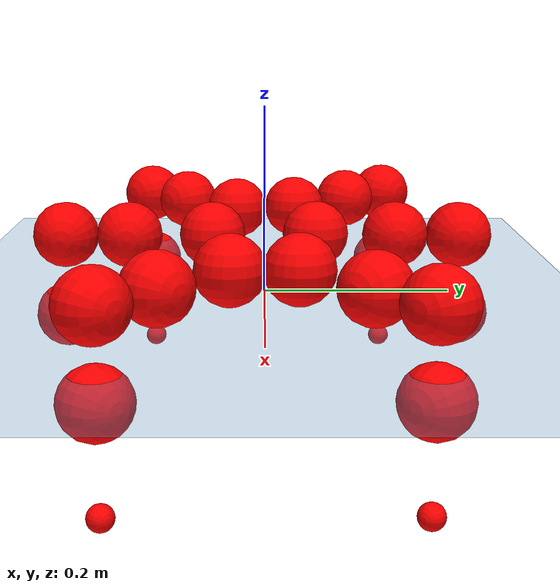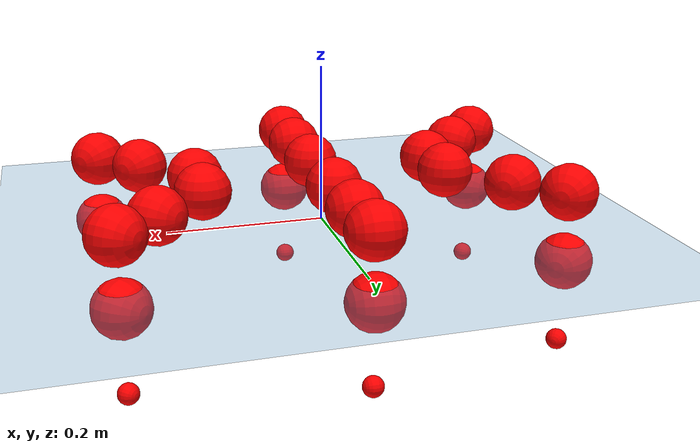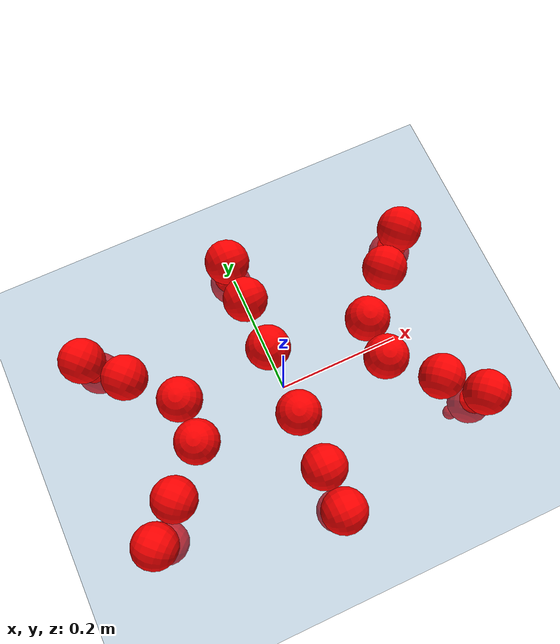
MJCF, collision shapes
<mujoco model="Golem">
  <compiler angle="radian" assetdir="assets" balanceinertia="true" inertiafromgeom="false"/>

  <option timestep="0.005" density="1.2" viscosity="2e-05"/>

  <size nkey="1"/>

  <visual>
    <quality shadowsize="8192"/>
    <map shadowclip="0.5"/>
  </visual>

  <default>
    <default class="/">
      <joint armature="0.01" damping="0.01" frictionloss="0.01"/>
      <geom contype="0" conaffinity="0" group="1" solref="-1000 -80"/>
      <site size="0.01 0.005 0.005" group="5"/>
      <general forcelimited="true" biastype="affine" gainprm="25" biasprm="0 -25 -0.5"/>
      <default class="visual">
        <geom type="mesh" group="2"/>
      </default>
      <default class="collision">
        <geom group="3"/>
      </default>
      <default class="foot">
        <geom size="0.01 0 0" condim="6" group="4" priority="1" solimp="0.015 1 0.01"/>
      </default>
      <default class="reward_collision_sphere">
        <geom group="5" rgba="1 0 0 1"/>
      </default>
    </default>
  </default>

  <asset>
    <texture type="skybox" colorspace="auto" name="//unnamed_texture_0" builtin="gradient" rgb1="0.95 0.95 0.95" rgb2="0.95 0.95 0.95" width="100" height="600"/>
    <texture type="2d" colorspace="auto" name="texplane" builtin="checker" rgb1="0.345 0.575 0.748" rgb2="0.345 0.575 0.748" markrgb="1 1 1" width="512" height="512"/>
    <material name="MatPlane" class="/" texture="texplane" texuniform="true" texrepeat="2 2" specular="0.9"/>
    <mesh name="body" class="/" file="body.stl" scale="0.001 0.001 0.001"/>
    <mesh name="coxa" class="/" file="coxa.stl" scale="0.001 0.001 0.001"/>
    <mesh name="femur" class="/" file="femur.stl" scale="0.001 0.001 0.001"/>
    <mesh name="tibia" class="/" file="tibia.stl" scale="0.001 0.001 0.001"/>
    <mesh name="tarsus" class="/" file="tarsus.stl" scale="0.001 0.001 0.001"/>
  </asset>

  <worldbody>
    <geom name="floor" class="/" size="100 100 0.125" type="plane" group="0" material="MatPlane"/>
    <light name="toplight_shadow" class="/" pos="0 0 5" dir="0.0990148 0.0990148 -0.990148" type="directional" ambient="0.04 0.04 0.04" diffuse="0.55 0.55 0.55" specular="0.12 0.12 0.12"/>
    <light name="toplight_fill" class="/" pos="0 0 5" dir="0.0990148 0.0990148 -0.990148" type="directional" castshadow="false" ambient="0.04 0.04 0.04" diffuse="0.3 0.3 0.3" specular="0.08 0.08 0.08"/>
    <body name="trunk" pos="0.000479741 0.000212125 -0.000276007" quat="1 0.00018822 0.000208516 0.00027289">
      <inertial pos="-0.000327882 0.000958777 -0.00297682" quat="0.99999 -0.00071279 0.00154829 0.00422041" mass="2.55927" diaginertia="0.0102156 0.00117084 0.00939739"/>
      <joint name="//unnamed_joint_0" type="free"/>
      <geom name="//unnamed_geom_1" class="/" pos="0 0 0.0632058" quat="1 0 0 0" type="mesh" rgba="0.9 0.9 0.9 1" mesh="body"/>
      <site name="imu" class="/" pos="0.130551 0.000173257 0.103286" size="0.0088103"/>
      <camera name="track" class="/" pos="0 -1.3014 0" quat="0.707107 0.707107 0 0" mode="trackcom"/>
      <camera name="ego_camera" class="/" pos="0.130624 0 0.0987591" quat="-0.5 -0.5 0.5 0.5"/>
      <body name="coxa_RR" pos="-0.177831 -0.0545469 0.0626423" quat="0.38276 5.58573e-05 0.000204422 -0.923848">
        <inertial pos="-0.000958052 -0.00069848 -0.000529134" quat="0.99998 -0.000132906 0.00626379 -0.00103762" mass="0.139377" diaginertia="0.0103238 0.00116685 0.00947323"/>
        <joint name="coxa_joint_RR" class="/" pos="0 0 0" axis="-0.000496838 -0.00160914 -0.999999" range="-3.13691 3.11355" armature="0.00930339" damping="0.00267425" frictionloss="0.00882792"/>
        <geom name="//unnamed_geom_2" class="/" type="mesh" rgba="0.2 0.2 0.2 1" mesh="coxa"/>
        <geom name="//unnamed_geom_3" class="reward_collision_sphere" size="0.0352412" pos="-0.030144 0 0"/>
        <body name="femur_RR" pos="0.0593505 0.000718029 -0.00073037" quat="0.500219 -0.499937 0.499982 0.499861">
          <inertial pos="0.000507537 -0.000755679 -1.8678e-05" quat="0.999998 -0.0013659 -0.000630638 -0.00128093" mass="0.135633" diaginertia="0.0101433 0.00115473 0.00935446"/>
          <joint name="femur_joint_RR" class="/" pos="0 0 0" axis="0.00174226 0.00168049 -0.999997" range="-3.15769 3.15512" armature="0.00882215" damping="0" frictionloss="0.00848371"/>
          <geom name="//unnamed_geom_4" class="/" type="mesh" rgba="0.9 0.9 0.9 1" mesh="femur"/>
          <geom name="//unnamed_geom_5" class="reward_collision_sphere" size="0.0352412"/>
          <body name="tibia_RR" pos="0.000517299 -0.0704898 -0.000511796" quat="9.38276e-05 1 8.48655e-05 -0.000335237">
            <inertial pos="0.000511811 0.00041868 -0.000295278" quat="0.999992 -0.00149717 -0.00300581 -0.00195509" mass="0.139094" diaginertia="0.0101646 0.00116884 0.00937064"/>
            <joint name="tibia_joint_RR" class="/" pos="0 0 0" axis="0.000645371 9.53372e-05 1" range="-3.12629 3.14094" armature="0.0088854" damping="0" frictionloss="0.00876765"/>
            <geom name="//unnamed_geom_6" class="/" type="mesh" rgba="0.2 0.2 0.2 1" mesh="tibia"/>
            <geom name="//unnamed_geom_7" class="reward_collision_sphere" size="0.0352412"/>
            <body name="tarsus_RR" pos="0.088325 0.000527771 -0.000638598" quat="1 0.000325453 -0.000286823 -0.000159921">
              <inertial pos="0.0619645 0.000636322 0.00048016" quat="0.499759 0.499496 0.500884 0.499859" mass="0.137903" diaginertia="0.0102597 0.00117799 0.00943301"/>
              <joint name="tarsus_joint_RR" class="/" pos="0 0 0" axis="-0.00135348 0.00352483 0.999993" stiffness="0.000610346" range="-3.1387 3.13844" armature="0.00897809" damping="0.0427279" frictionloss="0.00889207"/>
              <geom name="//unnamed_geom_8" class="/" type="mesh" rgba="0.9 0.9 0.9 1" mesh="tarsus"/>
              <geom name="foot_1" class="foot" size="0.00855734" pos="0.112537 0 0" quat="0 -0.707107 0 0.707107"/>
              <geom name="//unnamed_geom_10" class="reward_collision_sphere" size="0.0352412"/>
              <geom name="//unnamed_geom_11" class="reward_collision_sphere" size="0.0132154" pos="0.108016 0 0"/>
              <site name="foot_1" class="foot" pos="0.112537 0 0" quat="0 -0.707107 0 0.707107" size="0.0088103"/>
            </body>
          </body>
        </body>
      </body>
      <body name="coxa_RM" pos="-0.000841318 -0.0863919 0.062802" quat="0.707126 2.59397e-05 -0.000219694 -0.707088">
        <inertial pos="-0.000138555 -3.63708e-05 -0.000113354" quat="1 0.00018643 -0.000531664 -0.000106014" mass="0.137574" diaginertia="0.0104279 0.0011617 0.00943237"/>
        <joint name="coxa_joint_RM" class="/" pos="0 0 0" axis="0.00162145 5.69522e-05 -0.999999" range="-3.14377 3.13691" armature="0.00859128" damping="0.00754346" frictionloss="0.00882172"/>
        <geom name="//unnamed_geom_12" class="/" type="mesh" rgba="0.2 0.2 0.2 1" mesh="coxa"/>
        <geom name="//unnamed_geom_13" class="reward_collision_sphere" size="0.0352412" pos="-0.030144 0 0"/>
        <body name="femur_RM" pos="0.0590018 0.000427427 0.000147051" quat="0.500048 -0.500079 0.49957 0.500303">
          <inertial pos="0.000252636 0.000691149 -0.000551091" quat="0.999987 -0.00104563 0.00496199 0.000210797" mass="0.133173" diaginertia="0.0101901 0.00114368 0.00921379"/>
          <joint name="femur_joint_RM" class="/" pos="0 0 0" axis="-0.000881634 0.000572643 -0.999999" range="-3.16229 3.1383" armature="0.00878799" damping="0.00936538" frictionloss="0.00880912"/>
          <geom name="//unnamed_geom_14" class="/" type="mesh" rgba="0.9 0.9 0.9 1" mesh="femur"/>
          <geom name="//unnamed_geom_15" class="reward_collision_sphere" size="0.0352412"/>
          <body name="tibia_RM" pos="4.33837e-05 -0.0689076 -0.000630863" quat="-0.000443663 1 -9.54204e-05 -0.00030324">
            <inertial pos="0.000539088 0.000235334 -0.000135778" quat="0.999999 -0.00138097 0.000714553 -0.000670327" mass="0.137295" diaginertia="0.0102576 0.0011581 0.00923945"/>
            <joint name="tibia_joint_RM" class="/" pos="0 0 0" axis="-0.00230837 -0.00206231 0.999995" range="-3.1385 3.13601" armature="0.00860587" damping="0.00473683" frictionloss="0.0087697"/>
            <geom name="//unnamed_geom_16" class="/" type="mesh" rgba="0.2 0.2 0.2 1" mesh="tibia"/>
            <geom name="//unnamed_geom_17" class="reward_collision_sphere" size="0.0352412"/>
            <body name="tarsus_RM" pos="0.088812 0.00015066 0.000980349" quat="1 -0.000179663 6.37534e-05 5.84305e-05">
              <inertial pos="0.0603027 4.55342e-06 0.000260322" quat="0.50071 0.498451 0.501298 0.499535" mass="0.137361" diaginertia="0.0101556 0.00117165 0.00923634"/>
              <joint name="tarsus_joint_RM" class="/" pos="0 0 0" axis="-0.000564974 -0.000414293 1" range="-3.12766 3.16208" armature="0.00920095" damping="0.00464224" frictionloss="0.00829384"/>
              <geom name="//unnamed_geom_18" class="/" type="mesh" rgba="0.9 0.9 0.9 1" mesh="tarsus"/>
              <geom name="foot_2" class="foot" size="0.0087847" pos="0.112537 0 0" quat="0 -0.707107 0 0.707107"/>
              <geom name="//unnamed_geom_20" class="reward_collision_sphere" size="0.0352412"/>
              <geom name="//unnamed_geom_21" class="reward_collision_sphere" size="0.0132154" pos="0.108016 0 0"/>
              <site name="foot_2" class="foot" pos="0.112537 0 0" quat="0 -0.707107 0 0.707107" size="0.0088103"/>
            </body>
          </body>
        </body>
      </body>
      <body name="coxa_RF" pos="0.178575 -0.0544551 0.0625467" quat="0.923851 2.41337e-05 -5.49944e-05 -0.382751">
        <inertial pos="0.000817814 0.000597986 0.000271555" quat="0.999999 -0.00136864 5.92885e-05 0.0001619" mass="0.137498" diaginertia="0.0101953 0.00117708 0.00937936"/>
        <joint name="coxa_joint_RF" class="/" pos="0 0 0" axis="-9.68165e-05 -7.48966e-05 -1" range="-3.15743 3.12429" armature="0.00909318" damping="0.0020645" frictionloss="0.00897901"/>
        <geom name="//unnamed_geom_22" class="/" type="mesh" rgba="0.2 0.2 0.2 1" mesh="coxa"/>
        <geom name="//unnamed_geom_23" class="reward_collision_sphere" size="0.0352412" pos="-0.030144 0 0"/>
        <body name="femur_RF" pos="0.0588667 0.000488117 -0.000596185" quat="0.500067 -0.499976 0.5 0.499956">
          <inertial pos="0.000453277 0.000637842 0.00107371" quat="1 7.1155e-05 0.000215735 0.000532281" mass="0.133893" diaginertia="0.0101364 0.00115247 0.00920739"/>
          <joint name="femur_joint_RF" class="/" pos="0 0 0" axis="0.00592035 -0.000232323 -0.999982" range="-3.14127 3.15625" armature="0.00935125" damping="0.00968654" frictionloss="0.00866008"/>
          <geom name="//unnamed_geom_24" class="/" type="mesh" rgba="0.9 0.9 0.9 1" mesh="femur"/>
          <geom name="//unnamed_geom_25" class="reward_collision_sphere" size="0.0352412"/>
          <body name="tibia_RF" pos="0.00086056 -0.0712502 0.000563547" quat="-0.000134051 1 0.000345195 -0.000386168">
            <inertial pos="0.000605022 0.00021813 -8.62e-05" quat="0.999999 0.000123736 -0.00079437 -0.000811746" mass="0.136412" diaginertia="0.0103369 0.0011695 0.00957093"/>
            <joint name="tibia_joint_RF" class="/" pos="0 0 0" axis="-1.69152e-06 0.000144637 1" range="-3.13817 3.15074" armature="0.00892948" damping="0.011893" frictionloss="0.00860813"/>
            <geom name="//unnamed_geom_26" class="/" type="mesh" rgba="0.2 0.2 0.2 1" mesh="tibia"/>
            <geom name="//unnamed_geom_27" class="reward_collision_sphere" size="0.0352412"/>
            <body name="tarsus_RF" pos="0.0872939 0.00033337 -0.000390219" quat="1 0.000144774 7.22318e-05 -0.000456759">
              <inertial pos="0.0591754 0.000413631 -0.000317949" quat="0.497176 0.501207 0.502097 0.499506" mass="0.138095" diaginertia="0.0103744 0.0011817 0.00945304"/>
              <joint name="tarsus_joint_RF" class="/" pos="0 0 0" axis="-0.000589706 0.00732761 0.999973" range="-3.13788 3.14251" armature="0.0088378" damping="0" frictionloss="0.00844509"/>
              <geom name="//unnamed_geom_28" class="/" type="mesh" rgba="0.9 0.9 0.9 1" mesh="tarsus"/>
              <geom name="foot_3" class="foot" size="0.0087941" pos="0.112537 0 0" quat="0 -0.707107 0 0.707107"/>
              <geom name="//unnamed_geom_30" class="reward_collision_sphere" size="0.0352412"/>
              <geom name="//unnamed_geom_31" class="reward_collision_sphere" size="0.0132154" pos="0.108016 0 0"/>
              <site name="foot_3" class="foot" pos="0.112537 0 0" quat="0 -0.707107 0 0.707107" size="0.0088103"/>
            </body>
          </body>
        </body>
      </body>
      <body name="coxa_LR" pos="-0.17682 0.057075 0.0646348" quat="0.382631 0.000141617 8.21074e-06 0.923901">
        <inertial pos="9.39117e-05 -7.37186e-05 0.000463406" quat="1 0.00052868 0.000155415 -0.00058962" mass="0.137873" diaginertia="0.0101944 0.00116982 0.00923676"/>
        <joint name="coxa_joint_LR" class="/" pos="0 0 0" axis="-0.00277359 0.00353011 -0.99999" range="-3.13961 3.13975" armature="0.00925256" damping="0.00543504" frictionloss="0.0088258"/>
        <geom name="//unnamed_geom_32" class="/" type="mesh" rgba="0.2 0.2 0.2 1" mesh="coxa"/>
        <geom name="//unnamed_geom_33" class="reward_collision_sphere" size="0.0352412" pos="-0.030144 0 0"/>
        <body name="femur_LR" pos="0.0613879 -0.00177815 -0.00140588" quat="0.499744 -0.50038 0.499988 0.499888">
          <inertial pos="0.000150035 -0.00062303 -0.00107265" quat="0.999993 0.00139365 -0.00111509 -0.00325758" mass="0.135916" diaginertia="0.0101299 0.00118036 0.00930105"/>
          <joint name="femur_joint_LR" class="/" pos="0 0 0" axis="-1.89167e-05 2.8529e-05 1" range="-3.14906 3.14621" armature="0.00880696" damping="0" frictionloss="0.00889186"/>
          <geom name="//unnamed_geom_34" class="/" type="mesh" rgba="0.9 0.9 0.9 1" mesh="femur"/>
          <geom name="//unnamed_geom_35" class="reward_collision_sphere" size="0.0352412"/>
          <body name="tibia_LR" pos="0.000637008 -0.071623 -0.00106865" quat="-1.66099e-05 1 1.43488e-05 -3.82763e-05">
            <inertial pos="-0.00146041 0.000476362 -0.000456927" quat="0.999997 0.00220349 -0.000551356 -0.000820983" mass="0.136793" diaginertia="0.0101846 0.00116232 0.0094218"/>
            <joint name="tibia_joint_LR" class="/" pos="0 0 0" axis="-0.000908655 0.000901127 -0.999999" range="-3.12719 3.13412" armature="0.00919466" damping="0.00343445" frictionloss="0.00905752"/>
            <geom name="//unnamed_geom_36" class="/" type="mesh" rgba="0.2 0.2 0.2 1" mesh="tibia"/>
            <geom name="//unnamed_geom_37" class="reward_collision_sphere" size="0.0352412"/>
            <body name="tarsus_LR" pos="0.0894036 0.00115942 0.00130307" quat="1 5.29417e-05 -7.88181e-06 2.28858e-05">
              <inertial pos="0.0611749 0.000857396 1.49065e-05" quat="0.499498 0.499118 0.500611 0.50077" mass="0.138937" diaginertia="0.0104072 0.00116198 0.00943477"/>
              <joint name="tarsus_joint_LR" class="/" pos="0 0 0" axis="0.00273492 0.00499946 -0.999984" stiffness="0.00314038" range="-3.14932 3.14639" armature="0.00863293" damping="0.0285247" frictionloss="0.00867107"/>
              <geom name="//unnamed_geom_38" class="/" type="mesh" rgba="0.9 0.9 0.9 1" mesh="tarsus"/>
              <geom name="foot_4" class="foot" size="0.0086178" pos="0.112537 0 0" quat="0.707107 0 -0.707107 0"/>
              <geom name="//unnamed_geom_40" class="reward_collision_sphere" size="0.0352412"/>
              <geom name="//unnamed_geom_41" class="reward_collision_sphere" size="0.0132154" pos="0.108016 0 0"/>
              <site name="foot_4" class="foot" pos="0.112537 0 0" quat="0.707107 0 -0.707107 0" size="0.0088103"/>
            </body>
          </body>
        </body>
      </body>
      <body name="coxa_LM" pos="-0.00146751 0.0847551 0.0633908" quat="0.70714 -6.13931e-05 -4.59737e-05 0.707073">
        <inertial pos="0.000916485 0.000953585 8.57691e-05" quat="1 -7.80577e-05 -0.000191213 5.88929e-05" mass="0.136936" diaginertia="0.0102363 0.00116849 0.00942134"/>
        <joint name="coxa_joint_LM" class="/" pos="0 0 0" axis="0.00243897 0.00383195 -0.99999" range="-3.15519 3.15543" armature="0.00888978" damping="0.00727329" frictionloss="0.00843087"/>
        <geom name="//unnamed_geom_42" class="/" type="mesh" rgba="0.2 0.2 0.2 1" mesh="coxa"/>
        <geom name="//unnamed_geom_43" class="reward_collision_sphere" size="0.0352412" pos="-0.030144 0 0"/>
        <body name="femur_LM" pos="0.0556926 0.000548729 -0.000443513" quat="0.499582 -0.499794 0.500316 0.500308">
          <inertial pos="0.000531112 -0.00091045 -0.000398054" quat="0.999999 0.000575126 0.000135832 -0.00120446" mass="0.136763" diaginertia="0.0102107 0.00117677 0.00941994"/>
          <joint name="femur_joint_LM" class="/" pos="0 0 0" axis="-0.00395379 -0.000547828 0.999992" range="-3.15476 3.14091" armature="0.00837979" damping="0.00454669" frictionloss="0.00877729"/>
          <geom name="//unnamed_geom_44" class="/" type="mesh" rgba="0.9 0.9 0.9 1" mesh="femur"/>
          <geom name="//unnamed_geom_45" class="reward_collision_sphere" size="0.0352412"/>
          <body name="tibia_LM" pos="0.000466176 -0.0688289 0.00134997" quat="6.44321e-05 1 7.01054e-05 6.98031e-05">
            <inertial pos="-0.000569232 -0.00101198 -0.000999996" quat="0.999997 -0.000454844 6.60534e-05 0.00230163" mass="0.136685" diaginertia="0.0102922 0.00118004 0.00959702"/>
            <joint name="tibia_joint_LM" class="/" pos="0 0 0" axis="9.32686e-05 0.0017841 -0.999998" range="-3.13023 3.13055" armature="0.00891602" damping="0.00146427" frictionloss="0.00917324"/>
            <geom name="//unnamed_geom_46" class="/" type="mesh" rgba="0.2 0.2 0.2 1" mesh="tibia"/>
            <geom name="//unnamed_geom_47" class="reward_collision_sphere" size="0.0352412"/>
            <body name="tarsus_LM" pos="0.0868922 -6.94387e-05 -0.00153236" quat="1 -7.03233e-06 1.71673e-05 2.8555e-05">
              <inertial pos="0.0605323 0.000201482 -0.000137484" quat="0.497204 0.499448 0.50355 0.499777" mass="0.13919" diaginertia="0.0101697 0.0011753 0.00940811"/>
              <joint name="tarsus_joint_LM" class="/" pos="0 0 0" axis="-0.000822266 -0.00784844 -0.999969" range="-3.13618 3.15162" armature="0.00886458" damping="0.00532826" frictionloss="0.00882997"/>
              <geom name="//unnamed_geom_48" class="/" type="mesh" rgba="0.9 0.9 0.9 1" mesh="tarsus"/>
              <geom name="foot_5" class="foot" size="0.00861495" pos="0.112537 0 0" quat="0.707107 0 -0.707107 0"/>
              <geom name="//unnamed_geom_50" class="reward_collision_sphere" size="0.0352412"/>
              <geom name="//unnamed_geom_51" class="reward_collision_sphere" size="0.0132154" pos="0.108016 0 0"/>
              <site name="foot_5" class="foot" pos="0.112537 0 0" quat="0.707107 0 -0.707107 0" size="0.0088103"/>
            </body>
          </body>
        </body>
      </body>
      <body name="coxa_LF" pos="0.178828 0.0542156 0.0633393" quat="0.923851 -2.22692e-05 -3.13191e-05 0.382752">
        <inertial pos="7.43262e-06 0.000154746 0.000258955" quat="1 -7.33285e-05 -4.3745e-05 -1.90641e-06" mass="0.135429" diaginertia="0.0102237 0.00115851 0.00934902"/>
        <joint name="coxa_joint_LF" class="/" pos="0 0 0" axis="-0.000921439 -0.00163547 -0.999998" range="-3.13733 3.15596" armature="0.00879449" damping="0.00357688" frictionloss="0.00878601"/>
        <geom name="//unnamed_geom_52" class="/" type="mesh" rgba="0.2 0.2 0.2 1" mesh="coxa"/>
        <geom name="//unnamed_geom_53" class="reward_collision_sphere" size="0.0352412" pos="-0.030144 0 0"/>
        <body name="femur_LF" pos="0.0600154 0.0016201 -0.00167578" quat="0.499833 -0.500131 0.500022 0.500014">
          <inertial pos="-0.000159914 -0.000763967 -5.70443e-06" quat="0.999999 -0.00048024 -0.00097441 -0.000877685" mass="0.13779" diaginertia="0.0102671 0.00118558 0.00950424"/>
          <joint name="femur_joint_LF" class="/" pos="0 0 0" axis="0.00298318 0.00142449 0.999995" range="-3.13779 3.13014" armature="0.00887344" damping="0" frictionloss="0.00896179"/>
          <geom name="//unnamed_geom_54" class="/" type="mesh" rgba="0.9 0.9 0.9 1" mesh="femur"/>
          <geom name="//unnamed_geom_55" class="reward_collision_sphere" size="0.0352412"/>
          <body name="tibia_LF" pos="-0.000243017 -0.0707346 -0.000718274" quat="3.78552e-05 1 2.21799e-06 0.000204039">
            <inertial pos="-0.000304241 -0.000961292 0.000571372" quat="0.999997 -0.00160447 -0.00196002 -0.000521889" mass="0.137062" diaginertia="0.0102666 0.00115567 0.00931336"/>
            <joint name="tibia_joint_LF" class="/" pos="0 0 0" axis="0.00118301 0.00254749 -0.999996" range="-3.14282 3.15729" armature="0.00827435" damping="0.0014358" frictionloss="0.00881299"/>
            <geom name="//unnamed_geom_56" class="/" type="mesh" rgba="0.2 0.2 0.2 1" mesh="tibia"/>
            <geom name="//unnamed_geom_57" class="reward_collision_sphere" size="0.0352412"/>
            <body name="tarsus_LF" pos="0.087517 -0.000498187 -0.000479489" quat="1 -0.000600081 -0.000192136 -0.000123998">
              <inertial pos="0.0602824 3.9422e-05 -5.7893e-05" quat="0.500004 0.498916 0.500901 0.500177" mass="0.136873" diaginertia="0.0102904 0.00117149 0.00936818"/>
              <joint name="tarsus_joint_LF" class="/" pos="0 0 0" axis="0.00209468 -0.00131507 -0.999997" range="-3.1362 3.14525" armature="0.00887553" damping="0.00960346" frictionloss="0.00889167"/>
              <geom name="//unnamed_geom_58" class="/" type="mesh" rgba="0.9 0.9 0.9 1" mesh="tarsus"/>
              <geom name="foot_6" class="foot" size="0.00879767" pos="0.112537 0 0" quat="0.707107 0 -0.707107 0"/>
              <geom name="//unnamed_geom_60" class="reward_collision_sphere" size="0.0352412"/>
              <geom name="//unnamed_geom_61" class="reward_collision_sphere" size="0.0132154" pos="0.108016 0 0"/>
              <site name="foot_6" class="foot" pos="0.112537 0 0" quat="0.707107 0 -0.707107 0" size="0.0088103"/>
            </body>
          </body>
        </body>
      </body>
    </body>
  </worldbody>

  <contact>
    <pair class="/" geom1="floor" geom2="foot_1" name="//unnamed_contact_0"/>
    <pair class="/" geom1="floor" geom2="foot_2" name="//unnamed_contact_1"/>
    <pair class="/" geom1="floor" geom2="foot_3" name="//unnamed_contact_2"/>
    <pair class="/" geom1="floor" geom2="foot_4" name="//unnamed_contact_3"/>
    <pair class="/" geom1="floor" geom2="foot_5" name="//unnamed_contact_4"/>
    <pair class="/" geom1="floor" geom2="foot_6" name="//unnamed_contact_5"/>
  </contact>

  <actuator>
    <general name="coxa_joint_RR" class="/" joint="coxa_joint_RR" forcerange="-6.46827 6.46827" gainprm="20.9722" biasprm="0 -20.9722 -0.462164"/>
    <general name="femur_joint_RR" class="/" joint="femur_joint_RR" forcerange="-6.4173 6.4173" gainprm="20.9722" biasprm="0 -20.9722 -0.462164"/>
    <general name="tibia_joint_RR" class="/" joint="tibia_joint_RR" forcerange="-6.3583 6.3583" gainprm="20.9722" biasprm="0 -20.9722 -0.462164"/>
    <general name="tarsus_joint_RR" class="/" joint="tarsus_joint_RR" forcerange="-6.43061 6.43061" gainprm="20.9722" biasprm="0 -20.9722 -0.462164"/>
    <general name="coxa_joint_RM" class="/" joint="coxa_joint_RM" forcerange="-6.48169 6.48169" gainprm="20.9722" biasprm="0 -20.9722 -0.462164"/>
    <general name="femur_joint_RM" class="/" joint="femur_joint_RM" forcerange="-6.49437 6.49437" gainprm="20.9722" biasprm="0 -20.9722 -0.462164"/>
    <general name="tibia_joint_RM" class="/" joint="tibia_joint_RM" forcerange="-6.41674 6.41674" gainprm="20.9722" biasprm="0 -20.9722 -0.462164"/>
    <general name="tarsus_joint_RM" class="/" joint="tarsus_joint_RM" forcerange="-6.31183 6.31183" gainprm="20.9722" biasprm="0 -20.9722 -0.462164"/>
    <general name="coxa_joint_RF" class="/" joint="coxa_joint_RF" forcerange="-6.44218 6.44218" gainprm="20.9722" biasprm="0 -20.9722 -0.462164"/>
    <general name="femur_joint_RF" class="/" joint="femur_joint_RF" forcerange="-6.53519 6.53519" gainprm="20.9722" biasprm="0 -20.9722 -0.462164"/>
    <general name="tibia_joint_RF" class="/" joint="tibia_joint_RF" forcerange="-6.30022 6.30022" gainprm="20.9722" biasprm="0 -20.9722 -0.462164"/>
    <general name="tarsus_joint_RF" class="/" joint="tarsus_joint_RF" forcerange="-6.2349 6.2349" gainprm="20.9722" biasprm="0 -20.9722 -0.462164"/>
    <general name="coxa_joint_LR" class="/" joint="coxa_joint_LR" forcerange="-6.36369 6.36369" gainprm="20.9722" biasprm="0 -20.9722 -0.462164"/>
    <general name="femur_joint_LR" class="/" joint="femur_joint_LR" forcerange="-6.65313 6.65313" gainprm="20.9722" biasprm="0 -20.9722 -0.462164"/>
    <general name="tibia_joint_LR" class="/" joint="tibia_joint_LR" forcerange="-6.26195 6.26195" gainprm="20.9722" biasprm="0 -20.9722 -0.462164"/>
    <general name="tarsus_joint_LR" class="/" joint="tarsus_joint_LR" forcerange="-6.66848 6.66848" gainprm="20.9722" biasprm="0 -20.9722 -0.462164"/>
    <general name="coxa_joint_LM" class="/" joint="coxa_joint_LM" forcerange="-6.21143 6.21143" gainprm="20.9722" biasprm="0 -20.9722 -0.462164"/>
    <general name="femur_joint_LM" class="/" joint="femur_joint_LM" forcerange="-6.47755 6.47755" gainprm="20.9722" biasprm="0 -20.9722 -0.462164"/>
    <general name="tibia_joint_LM" class="/" joint="tibia_joint_LM" forcerange="-6.43796 6.43796" gainprm="20.9722" biasprm="0 -20.9722 -0.462164"/>
    <general name="tarsus_joint_LM" class="/" joint="tarsus_joint_LM" forcerange="-6.60545 6.60545" gainprm="20.9722" biasprm="0 -20.9722 -0.462164"/>
    <general name="coxa_joint_LF" class="/" joint="coxa_joint_LF" forcerange="-6.46717 6.46717" gainprm="20.9722" biasprm="0 -20.9722 -0.462164"/>
    <general name="femur_joint_LF" class="/" joint="femur_joint_LF" forcerange="-6.44037 6.44037" gainprm="20.9722" biasprm="0 -20.9722 -0.462164"/>
    <general name="tibia_joint_LF" class="/" joint="tibia_joint_LF" forcerange="-6.31536 6.31536" gainprm="20.9722" biasprm="0 -20.9722 -0.462164"/>
    <general name="tarsus_joint_LF" class="/" joint="tarsus_joint_LF" forcerange="-6.39901 6.39901" gainprm="20.9722" biasprm="0 -20.9722 -0.462164"/>
  </actuator>

  <sensor>
    <gyro site="imu" name="imu_angular_velocity"/>
    <velocimeter site="imu" name="imu_linear_velocity"/>
    <framelinvel objtype="site" objname="foot_1" name="foot_1_global_linear_velocity"/>
    <framelinvel objtype="site" objname="foot_2" name="foot_2_global_linear_velocity"/>
    <framelinvel objtype="site" objname="foot_3" name="foot_3_global_linear_velocity"/>
    <framelinvel objtype="site" objname="foot_4" name="foot_4_global_linear_velocity"/>
    <framelinvel objtype="site" objname="foot_5" name="foot_5_global_linear_velocity"/>
    <framelinvel objtype="site" objname="foot_6" name="foot_6_global_linear_velocity"/>
  </sensor>

  <keyframe>
    <key name="home" qpos="0 0 0.1457 1 0 0 0 0 0 0 0 0 0 0 0 0 0 0 0 0 0 0 0 0 0 0 0 0 0 0 0"/>
  </keyframe>
</mujoco>
